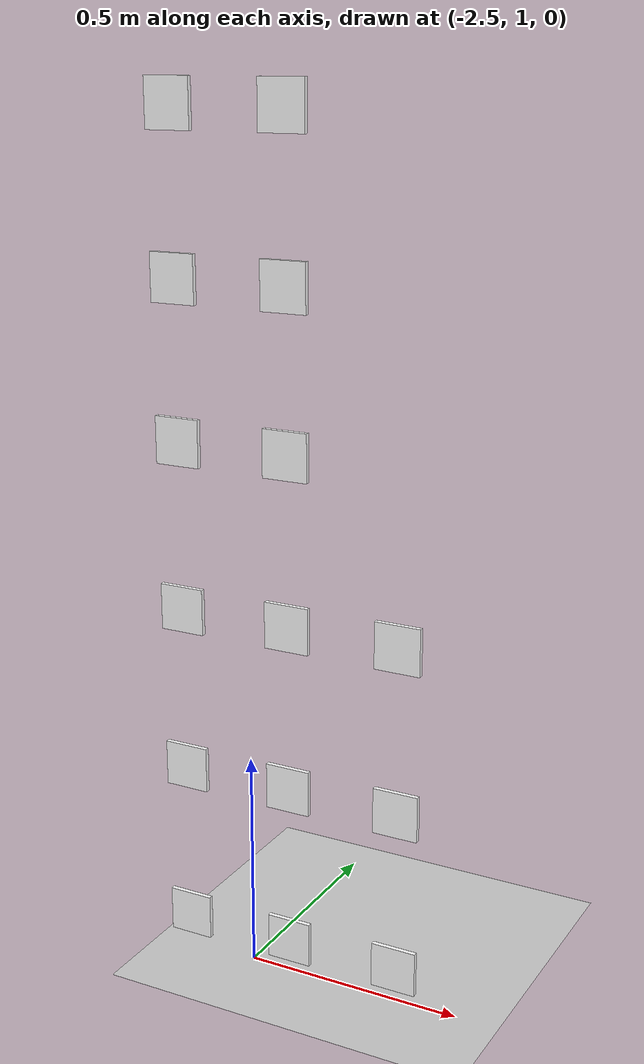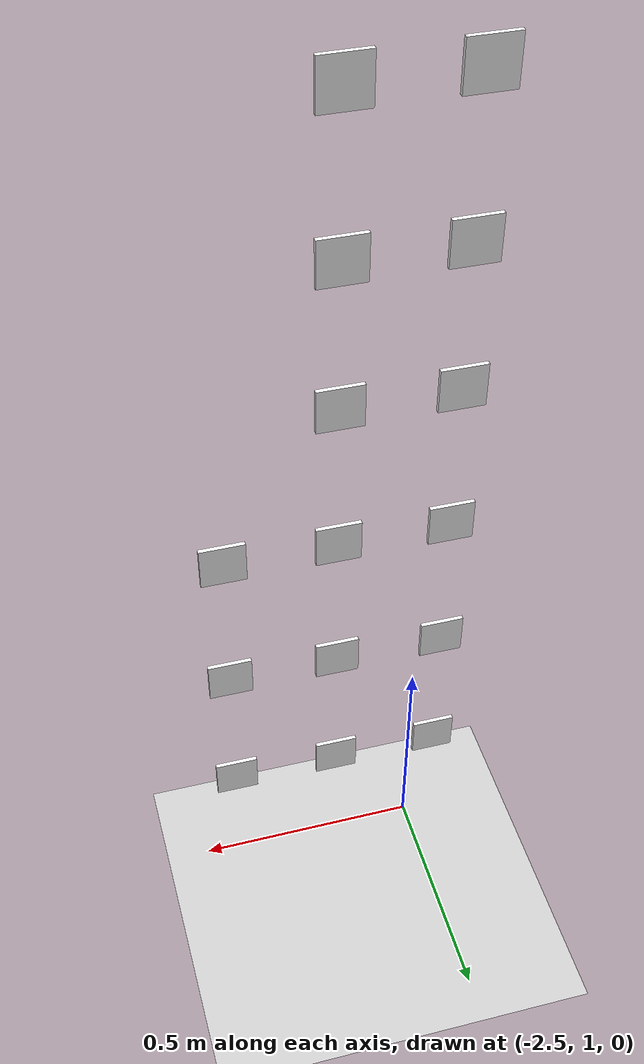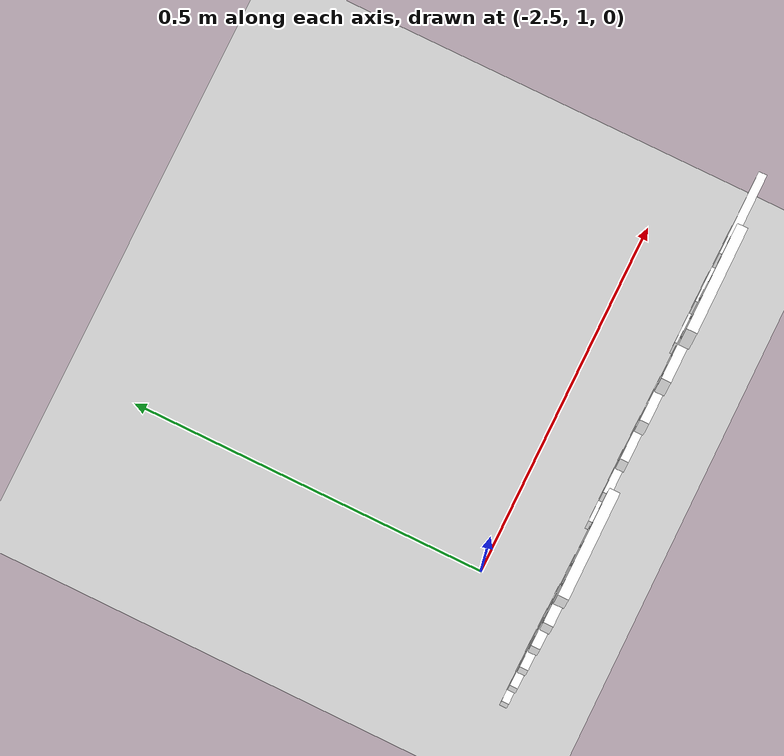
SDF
<sdf version="1.6">
 <world name="default">
  <include><uri>model://ground_plane</uri></include>
  <include><uri>model://sun</uri></include>
  <model name="stag_r1c1_l1_m3">
   <static>true</static>
   <pose>-2.1 0.9 0.146 1.5708 0 0</pose>
   <link name="marker_link">
    <collision name="collision"><geometry><box><size>0.1 0.1 0.01</size></box></geometry></collision>
    <visual name="visual">
     <geometry><box><size>0.1 0.1 0.01</size></box></geometry>
     <material>
      <script>
       <uri>model://STag_marker/materials/scripts</uri>
       <uri>model://STag_marker/materials/textures</uri>
       <name>STagMarker/marker_00426</name>
      </script>
      <ambient>1 1 1 1</ambient>
      <diffuse>1 1 1 1</diffuse>
     </material>
     <pose>0 0 0.001 0 0 0</pose>
    </visual>
   </link>
  </model>
  <model name="stag_r1c1_l1_m4">
   <static>true</static>
   <pose>-2.35 0.9 0.146 1.5708 0 0</pose>
   <link name="marker_link">
    <collision name="collision"><geometry><box><size>0.1 0.1 0.01</size></box></geometry></collision>
    <visual name="visual">
     <geometry><box><size>0.1 0.1 0.01</size></box></geometry>
     <material>
      <script>
       <uri>model://STag_marker/materials/scripts</uri>
       <uri>model://STag_marker/materials/textures</uri>
       <name>STagMarker/marker_00519</name>
      </script>
      <ambient>1 1 1 1</ambient>
      <diffuse>1 1 1 1</diffuse>
     </material>
     <pose>0 0 0.001 0 0 0</pose>
    </visual>
   </link>
  </model>
  <model name="stag_r1c1_l1_m5">
   <static>true</static>
   <pose>-2.6 0.9 0.146 1.5708 0 0</pose>
   <link name="marker_link">
    <collision name="collision"><geometry><box><size>0.1 0.1 0.01</size></box></geometry></collision>
    <visual name="visual">
     <geometry><box><size>0.1 0.1 0.01</size></box></geometry>
     <material>
      <script>
       <uri>model://STag_marker/materials/scripts</uri>
       <uri>model://STag_marker/materials/textures</uri>
       <name>STagMarker/marker_00525</name>
      </script>
      <ambient>1 1 1 1</ambient>
      <diffuse>1 1 1 1</diffuse>
     </material>
     <pose>0 0 0.001 0 0 0</pose>
    </visual>
   </link>
  </model>
  <model name="stag_r1c1_l2_m3">
   <static>true</static>
   <pose>-2.1 0.9 0.506 1.5708 0 0</pose>
   <link name="marker_link">
    <collision name="collision"><geometry><box><size>0.1 0.1 0.01</size></box></geometry></collision>
    <visual name="visual">
     <geometry><box><size>0.1 0.1 0.01</size></box></geometry>
     <material>
      <script>
       <uri>model://STag_marker/materials/scripts</uri>
       <uri>model://STag_marker/materials/textures</uri>
       <name>STagMarker/marker_00563</name>
      </script>
      <ambient>1 1 1 1</ambient>
      <diffuse>1 1 1 1</diffuse>
     </material>
     <pose>0 0 0.001 0 0 0</pose>
    </visual>
   </link>
  </model>
  <model name="stag_r1c1_l2_m4">
   <static>true</static>
   <pose>-2.35 0.9 0.506 1.5708 0 0</pose>
   <link name="marker_link">
    <collision name="collision"><geometry><box><size>0.1 0.1 0.01</size></box></geometry></collision>
    <visual name="visual">
     <geometry><box><size>0.1 0.1 0.01</size></box></geometry>
     <material>
      <script>
       <uri>model://STag_marker/materials/scripts</uri>
       <uri>model://STag_marker/materials/textures</uri>
       <name>STagMarker/marker_00578</name>
      </script>
      <ambient>1 1 1 1</ambient>
      <diffuse>1 1 1 1</diffuse>
     </material>
     <pose>0 0 0.001 0 0 0</pose>
    </visual>
   </link>
  </model>
  <model name="stag_r1c1_l2_m5">
   <static>true</static>
   <pose>-2.6 0.9 0.506 1.5708 0 0</pose>
   <link name="marker_link">
    <collision name="collision"><geometry><box><size>0.1 0.1 0.01</size></box></geometry></collision>
    <visual name="visual">
     <geometry><box><size>0.1 0.1 0.01</size></box></geometry>
     <material>
      <script>
       <uri>model://STag_marker/materials/scripts</uri>
       <uri>model://STag_marker/materials/textures</uri>
       <name>STagMarker/marker_00679</name>
      </script>
      <ambient>1 1 1 1</ambient>
      <diffuse>1 1 1 1</diffuse>
     </material>
     <pose>0 0 0.001 0 0 0</pose>
    </visual>
   </link>
  </model>
  <model name="stag_r1c1_l3_m3">
   <static>true</static>
   <pose>-2.1 0.9 0.867 1.5708 0 0</pose>
   <link name="marker_link">
    <collision name="collision"><geometry><box><size>0.1 0.1 0.01</size></box></geometry></collision>
    <visual name="visual">
     <geometry><box><size>0.1 0.1 0.01</size></box></geometry>
     <material>
      <script>
       <uri>model://STag_marker/materials/scripts</uri>
       <uri>model://STag_marker/materials/textures</uri>
       <name>STagMarker/marker_01138</name>
      </script>
      <ambient>1 1 1 1</ambient>
      <diffuse>1 1 1 1</diffuse>
     </material>
     <pose>0 0 0.001 0 0 0</pose>
    </visual>
   </link>
  </model>
  <model name="stag_r1c1_l3_m4">
   <static>true</static>
   <pose>-2.35 0.9 0.867 1.5708 0 0</pose>
   <link name="marker_link">
    <collision name="collision"><geometry><box><size>0.1 0.1 0.01</size></box></geometry></collision>
    <visual name="visual">
     <geometry><box><size>0.1 0.1 0.01</size></box></geometry>
     <material>
      <script>
       <uri>model://STag_marker/materials/scripts</uri>
       <uri>model://STag_marker/materials/textures</uri>
       <name>STagMarker/marker_01181</name>
      </script>
      <ambient>1 1 1 1</ambient>
      <diffuse>1 1 1 1</diffuse>
     </material>
     <pose>0 0 0.001 0 0 0</pose>
    </visual>
   </link>
  </model>
  <model name="stag_r1c1_l3_m5">
   <static>true</static>
   <pose>-2.6 0.9 0.867 1.5708 0 0</pose>
   <link name="marker_link">
    <collision name="collision"><geometry><box><size>0.1 0.1 0.01</size></box></geometry></collision>
    <visual name="visual">
     <geometry><box><size>0.1 0.1 0.01</size></box></geometry>
     <material>
      <script>
       <uri>model://STag_marker/materials/scripts</uri>
       <uri>model://STag_marker/materials/textures</uri>
       <name>STagMarker/marker_01311</name>
      </script>
      <ambient>1 1 1 1</ambient>
      <diffuse>1 1 1 1</diffuse>
     </material>
     <pose>0 0 0.001 0 0 0</pose>
    </visual>
   </link>
  </model>
  <model name="stag_r1c1_l4_m4">
   <static>true</static>
   <pose>-2.35 0.9 1.227 1.5708 0 0</pose>
   <link name="marker_link">
    <collision name="collision"><geometry><box><size>0.1 0.1 0.01</size></box></geometry></collision>
    <visual name="visual">
     <geometry><box><size>0.1 0.1 0.01</size></box></geometry>
     <material>
      <script>
       <uri>model://STag_marker/materials/scripts</uri>
       <uri>model://STag_marker/materials/textures</uri>
       <name>STagMarker/marker_01509</name>
      </script>
      <ambient>1 1 1 1</ambient>
      <diffuse>1 1 1 1</diffuse>
     </material>
     <pose>0 0 0.001 0 0 0</pose>
    </visual>
   </link>
  </model>
  <model name="stag_r1c1_l4_m5">
   <static>true</static>
   <pose>-2.6 0.9 1.227 1.5708 0 0</pose>
   <link name="marker_link">
    <collision name="collision"><geometry><box><size>0.1 0.1 0.01</size></box></geometry></collision>
    <visual name="visual">
     <geometry><box><size>0.1 0.1 0.01</size></box></geometry>
     <material>
      <script>
       <uri>model://STag_marker/materials/scripts</uri>
       <uri>model://STag_marker/materials/textures</uri>
       <name>STagMarker/marker_01579</name>
      </script>
      <ambient>1 1 1 1</ambient>
      <diffuse>1 1 1 1</diffuse>
     </material>
     <pose>0 0 0.001 0 0 0</pose>
    </visual>
   </link>
  </model>
  <model name="stag_r1c1_l5_m4">
   <static>true</static>
   <pose>-2.35 0.9 1.556 1.5708 0 0</pose>
   <link name="marker_link">
    <collision name="collision"><geometry><box><size>0.1 0.1 0.01</size></box></geometry></collision>
    <visual name="visual">
     <geometry><box><size>0.1 0.1 0.01</size></box></geometry>
     <material>
      <script>
       <uri>model://STag_marker/materials/scripts</uri>
       <uri>model://STag_marker/materials/textures</uri>
       <name>STagMarker/marker_01690</name>
      </script>
      <ambient>1 1 1 1</ambient>
      <diffuse>1 1 1 1</diffuse>
     </material>
     <pose>0 0 0.001 0 0 0</pose>
    </visual>
   </link>
  </model>
  <model name="stag_r1c1_l5_m5">
   <static>true</static>
   <pose>-2.6 0.9 1.556 1.5708 0 0</pose>
   <link name="marker_link">
    <collision name="collision"><geometry><box><size>0.1 0.1 0.01</size></box></geometry></collision>
    <visual name="visual">
     <geometry><box><size>0.1 0.1 0.01</size></box></geometry>
     <material>
      <script>
       <uri>model://STag_marker/materials/scripts</uri>
       <uri>model://STag_marker/materials/textures</uri>
       <name>STagMarker/marker_01824</name>
      </script>
      <ambient>1 1 1 1</ambient>
      <diffuse>1 1 1 1</diffuse>
     </material>
     <pose>0 0 0.001 0 0 0</pose>
    </visual>
   </link>
  </model>
  <model name="stag_r1c1_l6_m4">
   <static>true</static>
   <pose>-2.35 0.9 1.886 1.5708 0 0</pose>
   <link name="marker_link">
    <collision name="collision"><geometry><box><size>0.1 0.1 0.01</size></box></geometry></collision>
    <visual name="visual">
     <geometry><box><size>0.1 0.1 0.01</size></box></geometry>
     <material>
      <script>
       <uri>model://STag_marker/materials/scripts</uri>
       <uri>model://STag_marker/materials/textures</uri>
       <name>STagMarker/marker_02027</name>
      </script>
      <ambient>1 1 1 1</ambient>
      <diffuse>1 1 1 1</diffuse>
     </material>
     <pose>0 0 0.001 0 0 0</pose>
    </visual>
   </link>
  </model>
  <model name="stag_r1c1_l6_m5">
   <static>true</static>
   <pose>-2.6 0.9 1.886 1.5708 0 0</pose>
   <link name="marker_link">
    <collision name="collision"><geometry><box><size>0.1 0.1 0.01</size></box></geometry></collision>
    <visual name="visual">
     <geometry><box><size>0.1 0.1 0.01</size></box></geometry>
     <material>
      <script>
       <uri>model://STag_marker/materials/scripts</uri>
       <uri>model://STag_marker/materials/textures</uri>
       <name>STagMarker/marker_02149</name>
      </script>
      <ambient>1 1 1 1</ambient>
      <diffuse>1 1 1 1</diffuse>
     </material>
     <pose>0 0 0.001 0 0 0</pose>
    </visual>
   </link>
  </model>
 </world>
</sdf>
